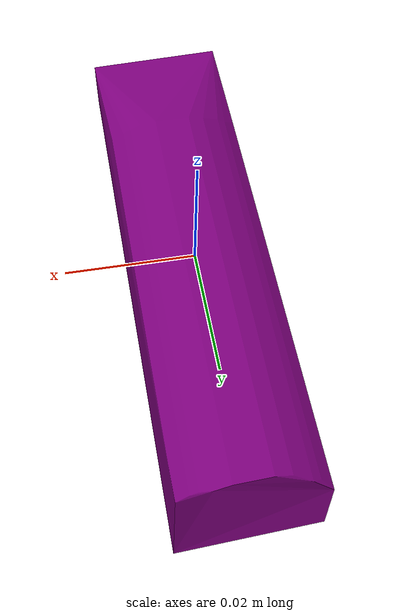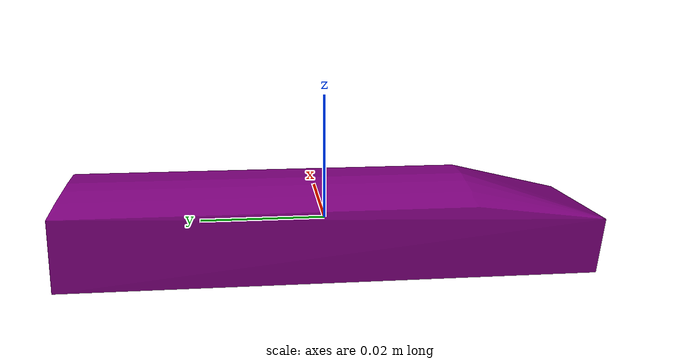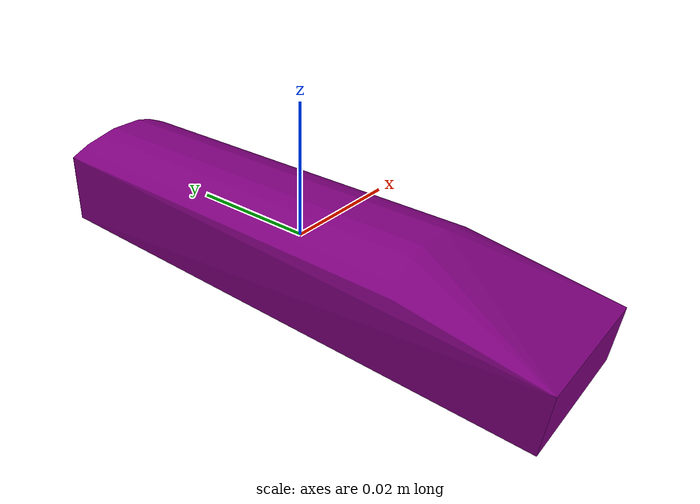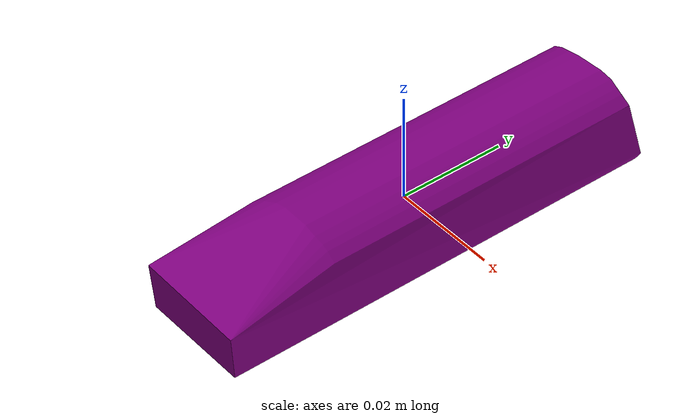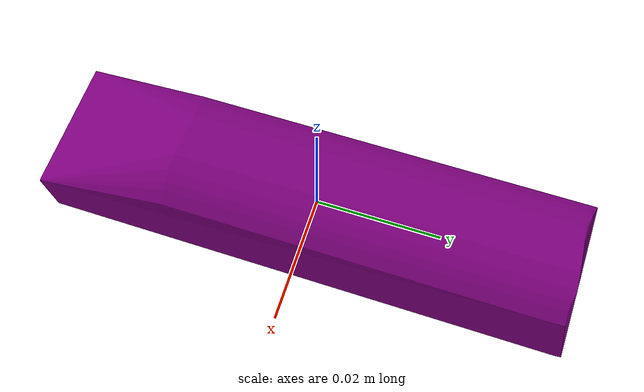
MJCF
<mujoco model="shapenet6-1">
  <asset>
    <mesh file="meshes/shapenet6-1/shapenet6-1_0.stl" name="shapenet6-1_0" scale="0.09 0.09 0.09"/>
    <texture file="../textures/metal.png" name="tex-metal" />
    <material name="metal" reflectance="0.7" texrepeat="15 15" texture="tex-metal" texuniform="true"/>
  </asset>
  <worldbody>
    <body>
      <body name="collision">
        <geom pos="0 0 0" mesh="shapenet6-1_0" type="mesh" solimp="0.998 0.998 0.001" solref="0.001 1" density="100" friction="0.95 0.3 0.1" rgba="0.5 0 0.5 1" group="1" condim="4"/>
      </body>
      <body name="visual">
        <geom pos="0 0 0" mesh="shapenet6-1_0" type="mesh" rgba="0 1 0 1" conaffinity="0" contype="0" group="0" mass="0.0001"/>
      </body>
      <site rgba="0 0 0 0" size="0.005" pos="0 0 -0.06" name="bottom_site"/>
      <site rgba="0 0 0 0" size="0.005" pos="0 0 0.04" name="top_site"/>
      <site rgba="0 0 0 0" size="0.005" pos="0.025 0.025 0" name="horizontal_radius_site"/>
    </body>
  </worldbody>
</mujoco>
